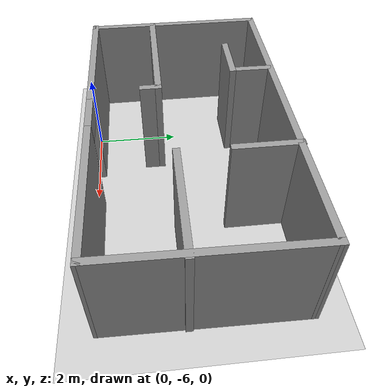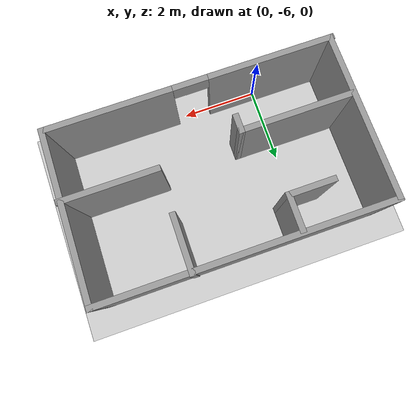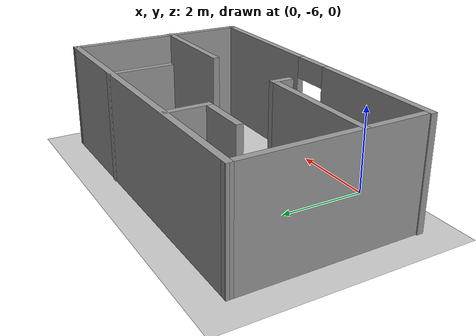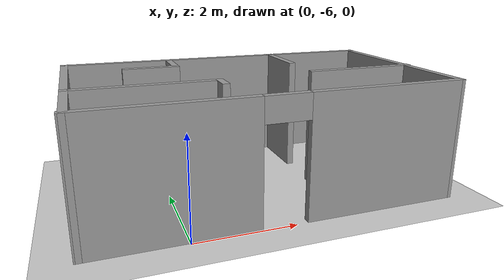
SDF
<sdf version="1.7">
 <world name="default">
  <light name="sun" type="directional">
   <pose>0 0 10 0 -0 0</pose>
   <diffuse>0.8 0.8 0.8 1</diffuse>
   <specular>0.2 0.2 0.2 1</specular>
   <attenuation>
    <range>1000</range>
    <constant>0.9</constant>
    <linear>0.01</linear>
    <quadratic>0.001</quadratic>
   </attenuation>
   <direction>-0.5 0.1 -0.9</direction>
   <spot><inner_angle>0</inner_angle><outer_angle>0</outer_angle><falloff>0</falloff></spot>
  </light>
  <model name="ground_plane">
   <static>1</static>
   <link name="link">
    <collision name="collision">
     <geometry><plane><normal>0 0 1</normal><size>100 100</size></plane></geometry>
     <surface><friction><ode><mu>100</mu><mu2>50</mu2></ode></friction></surface>
    </collision>
    <visual name="visual">
     <cast_shadows>0</cast_shadows>
     <geometry><plane><normal>0 0 1</normal><size>100 100</size></plane></geometry>
     <material>
      <script><uri>file://media/materials/scripts/gazebo.material</uri><name>Gazebo/Grey</name></script>
     </material>
    </visual>
   </link>
  </model>
  <gravity>0 0 -9.8</gravity>
  <magnetic_field>6e-06 2.3e-05 -4.2e-05</magnetic_field>
  <atmosphere type="adiabatic"/>
  <physics type="ode">
   <max_step_size>0.001</max_step_size>
   <real_time_factor>1</real_time_factor>
   <real_time_update_rate>1000</real_time_update_rate>
  </physics>
  <scene><ambient>0.4 0.4 0.4 1</ambient><background>0.7 0.7 0.7 1</background><shadows>1</shadows></scene>
  <audio><device>default</device></audio>
  <spherical_coordinates>
   <surface_model>EARTH_WGS84</surface_model>
   <latitude_deg>0</latitude_deg>
   <longitude_deg>0</longitude_deg>
   <elevation>0</elevation>
   <heading_deg>0</heading_deg>
  </spherical_coordinates>
  <model name="room">
   <pose>1.83526 -2.99303 0 0 -0 0</pose>
   <link name="Wall_16">
    <collision name="Wall_16_Collision">
     <geometry><box><size>7.5 0.15 2.5</size></box></geometry>
     <pose>0 0 1.25 0 -0 0</pose>
    </collision>
    <visual name="Wall_16_Visual">
     <pose>0 0 1.25 0 -0 0</pose>
     <geometry><box><size>7.5 0.15 2.5</size></box></geometry>
     <material>
      <script><uri>file://media/materials/scripts/gazebo.material</uri><name>Gazebo/Grey</name></script>
      <ambient>1 1 1 1</ambient>
     </material>
     <meta><layer>0</layer></meta>
    </visual>
    <pose>-0.000262 1.30303 0 0 -0 0</pose>
   </link>
   <link name="Wall_19">
    <collision name="Wall_19_Collision">
     <geometry><box><size>4.37043 0.15 2.5</size></box></geometry>
     <pose>0 0 1.25 0 -0 0</pose>
    </collision>
    <visual name="Wall_19_Visual">
     <pose>0 0 1.25 0 -0 0</pose>
     <geometry><box><size>4.37043 0.15 2.5</size></box></geometry>
     <material>
      <script><uri>file://media/materials/scripts/gazebo.material</uri><name>Gazebo/Grey</name></script>
      <ambient>1 1 1 1</ambient>
     </material>
     <meta><layer>0</layer></meta>
    </visual>
    <pose>3.64474 -0.806971 0 0 -0 1.55658</pose>
   </link>
   <link name="Wall_2">
    <pose>-0.030262 -2.91197 0 0 -0 3.14022</pose>
    <visual name="Wall_2_Visual_0">
     <pose>-2.07639 0 1.25 0 -0 0</pose>
     <geometry><box><size>3.28722 0.15 2.5</size></box></geometry>
     <material>
      <script><uri>file://media/materials/scripts/gazebo.material</uri><name>Gazebo/Grey</name></script>
      <ambient>1 1 1 1</ambient>
     </material>
     <meta><layer>0</layer></meta>
    </visual>
    <collision name="Wall_2_Collision_0">
     <geometry><box><size>3.28722 0.15 2.5</size></box></geometry>
     <pose>-2.07639 0 1.25 0 -0 0</pose>
    </collision>
    <visual name="Wall_2_Visual_1">
     <pose>2.09361 0 1.25 0 -0 0</pose>
     <geometry><box><size>3.25278 0.15 2.5</size></box></geometry>
     <material>
      <script><uri>file://media/materials/scripts/gazebo.material</uri><name>Gazebo/Grey</name></script>
      <ambient>1 1 1 1</ambient>
     </material>
     <meta><layer>0</layer></meta>
    </visual>
    <collision name="Wall_2_Collision_1">
     <geometry><box><size>3.25278 0.15 2.5</size></box></geometry>
     <pose>2.09361 0 1.25 0 -0 0</pose>
    </collision>
    <visual name="Wall_2_Visual_2">
     <pose>0.01722 0 2.25 0 -0 0</pose>
     <geometry><box><size>0.9 0.15 0.5</size></box></geometry>
     <material>
      <script><uri>file://media/materials/scripts/gazebo.material</uri><name>Gazebo/Grey</name></script>
      <ambient>1 1 1 1</ambient>
     </material>
     <meta><layer>0</layer></meta>
    </visual>
    <collision name="Wall_2_Collision_2">
     <geometry><box><size>0.9 0.15 0.5</size></box></geometry>
     <pose>0.01722 0 2.25 0 -0 0</pose>
    </collision>
   </link>
   <link name="Wall_21">
    <collision name="Wall_21_Collision">
     <geometry><box><size>1 0.15 2.5</size></box></geometry>
     <pose>0 0 1.25 0 -0 0</pose>
    </collision>
    <visual name="Wall_21_Visual">
     <pose>0 0 1.25 0 -0 0</pose>
     <geometry><box><size>1 0.15 2.5</size></box></geometry>
     <material>
      <script><uri>file://media/materials/scripts/gazebo.material</uri><name>Gazebo/Grey</name></script>
      <ambient>1 1 1 1</ambient>
     </material>
     <meta><layer>0</layer></meta>
    </visual>
    <pose>-1.31526 0.818029 0 0 -0 -1.5708</pose>
   </link>
   <link name="Wall_22">
    <collision name="Wall_22_Collision">
     <geometry><box><size>1.25 0.15 2.5</size></box></geometry>
     <pose>0 0 1.25 0 -0 0</pose>
    </collision>
    <visual name="Wall_22_Visual">
     <pose>0 0 1.25 0 -0 0</pose>
     <geometry><box><size>1.25 0.15 2.5</size></box></geometry>
     <material>
      <script><uri>file://media/materials/scripts/gazebo.material</uri><name>Gazebo/Grey</name></script>
      <ambient>1 1 1 1</ambient>
     </material>
     <meta><layer>0</layer></meta>
    </visual>
    <pose>-1.86526 0.393029 0 0 -0 3.14159</pose>
   </link>
   <link name="Wall_24">
    <collision name="Wall_24_Collision">
     <geometry><box><size>3 0.15 2.5</size></box></geometry>
     <pose>0 0 1.25 0 -0 0</pose>
    </collision>
    <visual name="Wall_24_Visual">
     <pose>0 0 1.25 0 -0 0</pose>
     <geometry><box><size>3 0.15 2.5</size></box></geometry>
     <material>
      <script><uri>file://media/materials/scripts/gazebo.material</uri><name>Gazebo/Grey</name></script>
      <ambient>1 1 1 1</ambient>
     </material>
     <meta><layer>0</layer></meta>
    </visual>
    <pose>-2.23026 -1.39697 0 0 -0 0</pose>
   </link>
   <link name="Wall_25">
    <collision name="Wall_25_Collision">
     <geometry><box><size>0.5 0.15 2.5</size></box></geometry>
     <pose>0 0 1.25 0 -0 0</pose>
    </collision>
    <visual name="Wall_25_Visual">
     <pose>0 0 1.25 0 -0 0</pose>
     <geometry><box><size>0.5 0.15 2.5</size></box></geometry>
     <material>
      <script><uri>file://media/materials/scripts/gazebo.material</uri><name>Gazebo/Grey</name></script>
      <ambient>1 1 1 1</ambient>
     </material>
     <meta><layer>0</layer></meta>
    </visual>
    <pose>-0.805262 -1.57197 0 0 -0 -1.5708</pose>
   </link>
   <link name="Wall_27">
    <collision name="Wall_27_Collision">
     <geometry><box><size>1.5 0.15 2.5</size></box></geometry>
     <pose>0 0 1.25 0 -0 0</pose>
    </collision>
    <visual name="Wall_27_Visual">
     <pose>0 0 1.25 0 -0 0</pose>
     <geometry><box><size>1.5 0.15 2.5</size></box></geometry>
     <material>
      <script><uri>file://media/materials/scripts/gazebo.material</uri><name>Gazebo/Grey</name></script>
      <ambient>1 1 1 1</ambient>
     </material>
     <meta><layer>0</layer></meta>
    </visual>
    <pose>1.32474 0.648029 0 0 -0 1.5708</pose>
   </link>
   <link name="Wall_29">
    <collision name="Wall_29_Collision">
     <geometry><box><size>2.5 0.15 2.5</size></box></geometry>
     <pose>0 0 1.25 0 -0 0</pose>
    </collision>
    <visual name="Wall_29_Visual">
     <pose>0 0 1.25 0 -0 0</pose>
     <geometry><box><size>2.5 0.15 2.5</size></box></geometry>
     <material>
      <script><uri>file://media/materials/scripts/gazebo.material</uri><name>Gazebo/Grey</name></script>
      <ambient>1 1 1 1</ambient>
     </material>
     <meta><layer>0</layer></meta>
    </visual>
    <pose>2.49974 -1.16697 0 0 -0 0</pose>
   </link>
   <link name="Wall_3">
    <collision name="Wall_3_Collision">
     <geometry><box><size>4.36076 0.15 2.5</size></box></geometry>
     <pose>0 0 1.25 0 -0 0</pose>
    </collision>
    <visual name="Wall_3_Visual">
     <pose>0 0 1.25 0 -0 0</pose>
     <geometry><box><size>4.36076 0.15 2.5</size></box></geometry>
     <material>
      <script><uri>file://media/materials/scripts/gazebo.material</uri><name>Gazebo/Grey</name></script>
      <ambient>1 1 1 1</ambient>
     </material>
     <meta><layer>0</layer></meta>
    </visual>
    <pose>-3.66026 -0.801971 0 0 -0 1.57792</pose>
   </link>
   <static>1</static>
  </model>
 </world>
</sdf>
